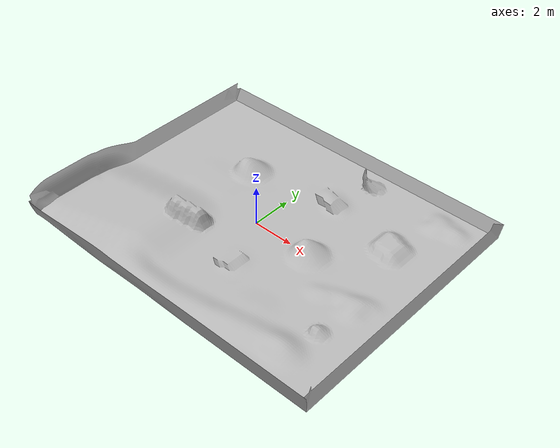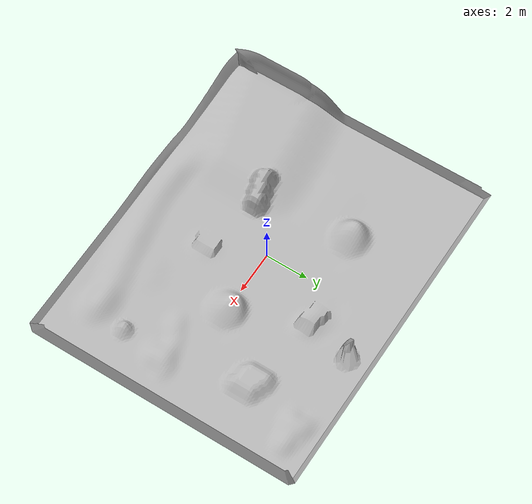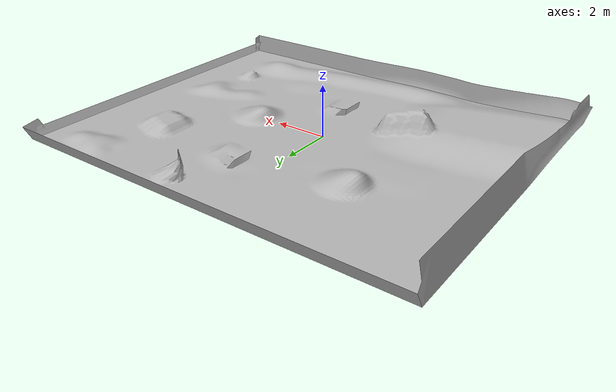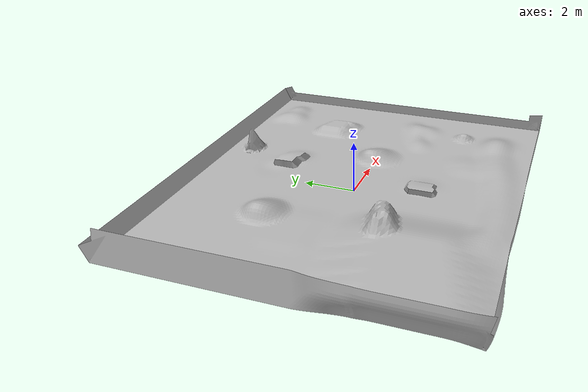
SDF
<sdf version='1.6'>
  <world name='default'>
    <include>
      <uri>model://sun</uri>
    </include>

    <include>
      <name>terrain_1</name>
      <uri>model://terrain_lake</uri>
      <pose>0 0 0 0 0 0</pose>
    </include>

    <gui fullscreen='0'>
      <camera name='user_camera'>
        <pose frame=''>9.0 -12.0 6.0 0.0 0.3 2.2</pose>
        <view_controller>orbit</view_controller>
        <projection_type>perspective</projection_type>
      </camera>
    </gui>

  </world>
</sdf>

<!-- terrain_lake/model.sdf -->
<sdf version="1.0">
  <model name="terrain_lake">
    <pose>0 0 0 0 0 0</pose>
    <static>true</static>
    <link name="body">
      <visual name="visual">
        <geometry>
          <mesh><uri>model://terrain_lake/media/Simple_Lake.dae</uri></mesh>
        </geometry>
	<material>
          <script>
            <uri>model://terrain_lake/media/scripts</uri>
            <uri>model://terrain_lake/media/Textures</uri>
            <name>RepeatedGrass/Diffuse</name>
          </script>
        </material>
      </visual>
      <collision name="collision">
        <geometry>
          <mesh><uri>model://terrain_lake/media/Simple_Lake.dae</uri></mesh>
        </geometry>
      </collision>
    </link>
  </model>
</sdf>
